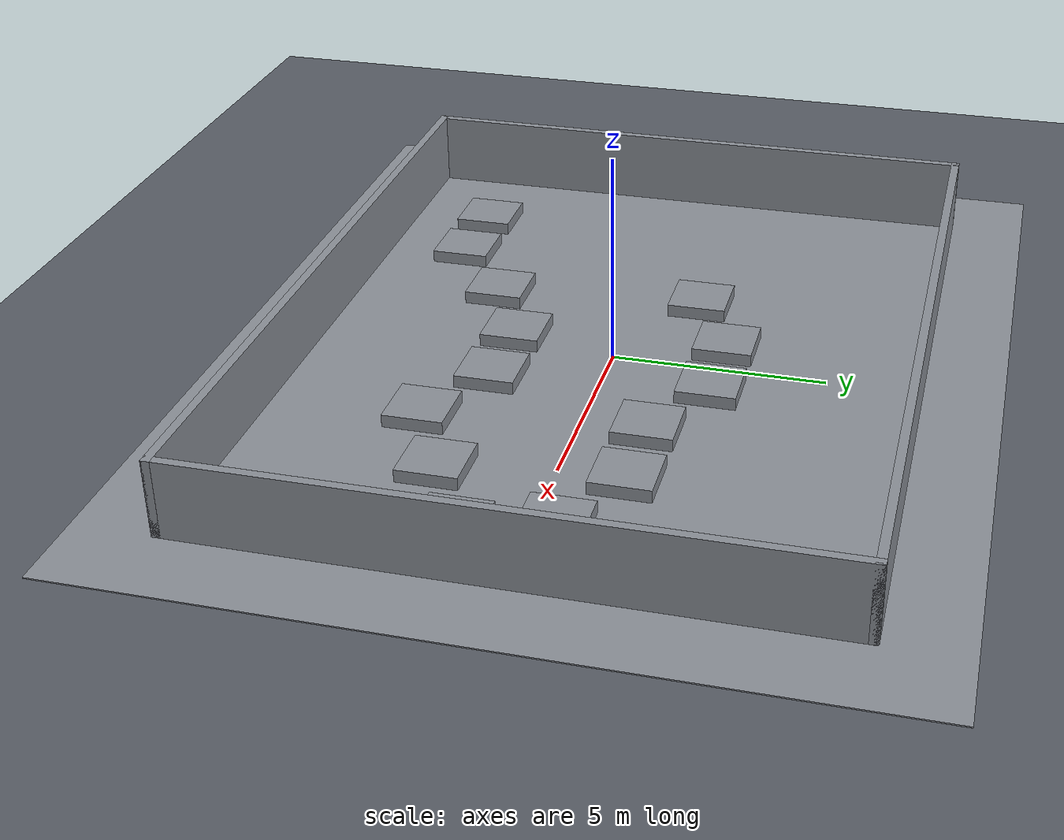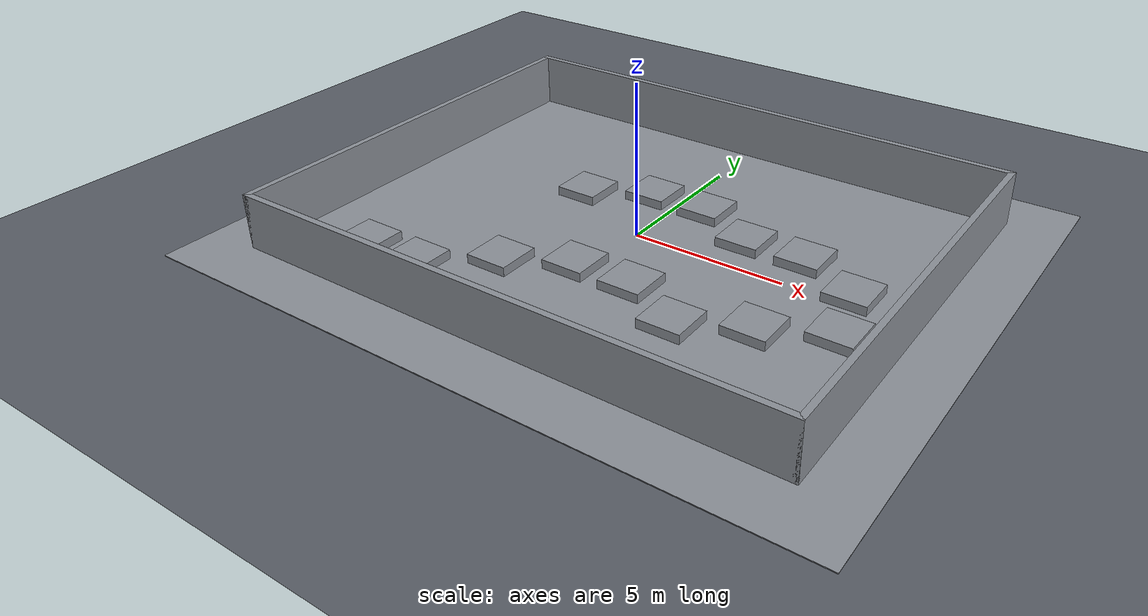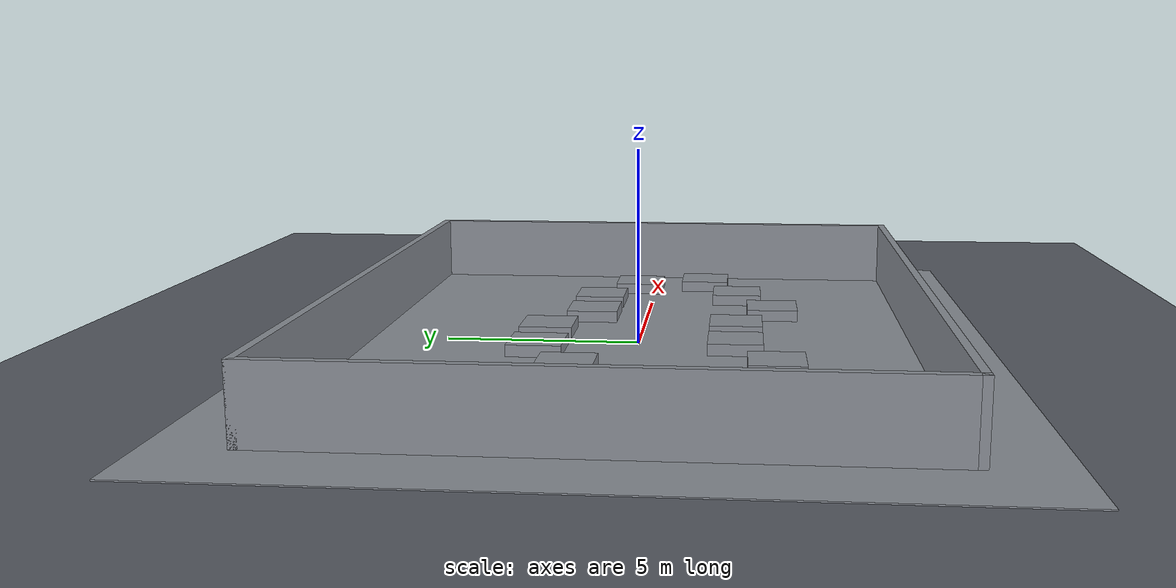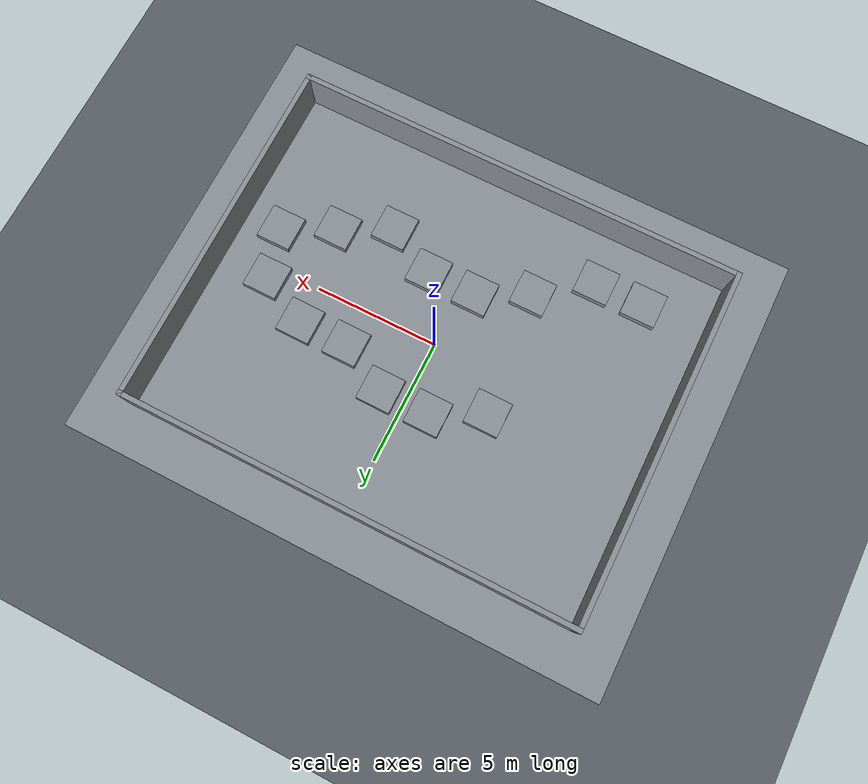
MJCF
<!-- Generated by robot_lab_maps/tools/gen_mjcf_worlds.py from
     maps/terrain_stepping_stones/worlds/terrain_stepping_stones.world - do not edit by hand. -->
<mujoco model="terrain_stepping_stones">
  <option gravity="0 0 -9.81" />
  <compiler angle="radian" />
  <worldbody>
    <geom type="plane" size="100 100 0.1" contype="0" conaffinity="0" rgba="0.35 0.37 0.4 1" />
    <geom pos="0 0 -0.05" quat="1 0 0 0" rgba="0.55 0.57 0.6 1" type="box" size="11 9 0.05" />
    <geom pos="0 -7.1 0.9" quat="1 0 0 0" rgba="0.55 0.57 0.6 1" type="box" size="9.2 0.1 0.9" />
    <geom pos="0 7.1 0.9" quat="1 0 0 0" rgba="0.55 0.57 0.6 1" type="box" size="9.2 0.1 0.9" />
    <geom pos="-9.1 0 0.9" quat="1 0 0 0" rgba="0.55 0.57 0.6 1" type="box" size="0.1 7.2 0.9" />
    <geom pos="9.1 0 0.9" quat="1 0 0 0" rgba="0.55 0.57 0.6 1" type="box" size="0.1 7.2 0.9" />
    <geom pos="-6.5 -5 0.15" quat="1 0 0 0" rgba="0.55 0.57 0.6 1" type="box" size="0.7 0.7 0.15" />
    <geom pos="-4.5 -5 0.15" quat="1 0 0 0" rgba="0.55 0.57 0.6 1" type="box" size="0.7 0.7 0.15" />
    <geom pos="-2.5 -3.5 0.15" quat="1 0 0 0" rgba="0.55 0.57 0.6 1" type="box" size="0.7 0.7 0.15" />
    <geom pos="-0.5 -2.5 0.15" quat="1 0 0 0" rgba="0.55 0.57 0.6 1" type="box" size="0.7 0.7 0.15" />
    <geom pos="1.5 -2.5 0.15" quat="1 0 0 0" rgba="0.55 0.57 0.6 1" type="box" size="0.7 0.7 0.15" />
    <geom pos="3.5 -3.5 0.15" quat="1 0 0 0" rgba="0.55 0.57 0.6 1" type="box" size="0.7 0.7 0.15" />
    <geom pos="5.5 -2.5 0.15" quat="1 0 0 0" rgba="0.55 0.57 0.6 1" type="box" size="0.7 0.7 0.15" />
    <geom pos="7.5 -1.5 0.15" quat="1 0 0 0" rgba="0.55 0.57 0.6 1" type="box" size="0.7 0.7 0.15" />
    <geom pos="7 0.5 0.15" quat="1 0 0 0" rgba="0.55 0.57 0.6 1" type="box" size="0.7 0.7 0.15" />
    <geom pos="5 1.5 0.15" quat="1 0 0 0" rgba="0.55 0.57 0.6 1" type="box" size="0.7 0.7 0.15" />
    <geom pos="3 1.5 0.15" quat="1 0 0 0" rgba="0.55 0.57 0.6 1" type="box" size="0.7 0.7 0.15" />
    <geom pos="1 2.5 0.15" quat="1 0 0 0" rgba="0.55 0.57 0.6 1" type="box" size="0.7 0.7 0.15" />
    <geom pos="-1 2.5 0.15" quat="1 0 0 0" rgba="0.55 0.57 0.6 1" type="box" size="0.7 0.7 0.15" />
    <geom pos="-3 1.5 0.15" quat="1 0 0 0" rgba="0.55 0.57 0.6 1" type="box" size="0.7 0.7 0.15" />
    <light diffuse="0.8 0.8 0.8" pos="0 0 10" dir="0 0 -1" castshadow="true" />
    <light diffuse="0.3 0.3 0.3" pos="0 -6 6" dir="0 1 -1" />
  </worldbody>
</mujoco>
